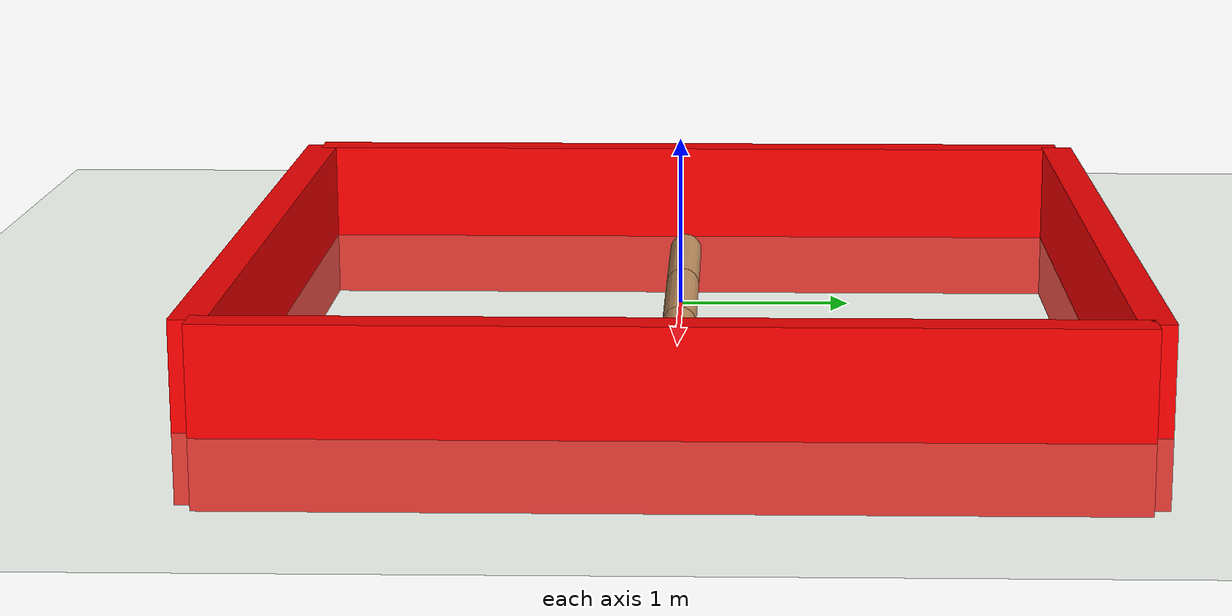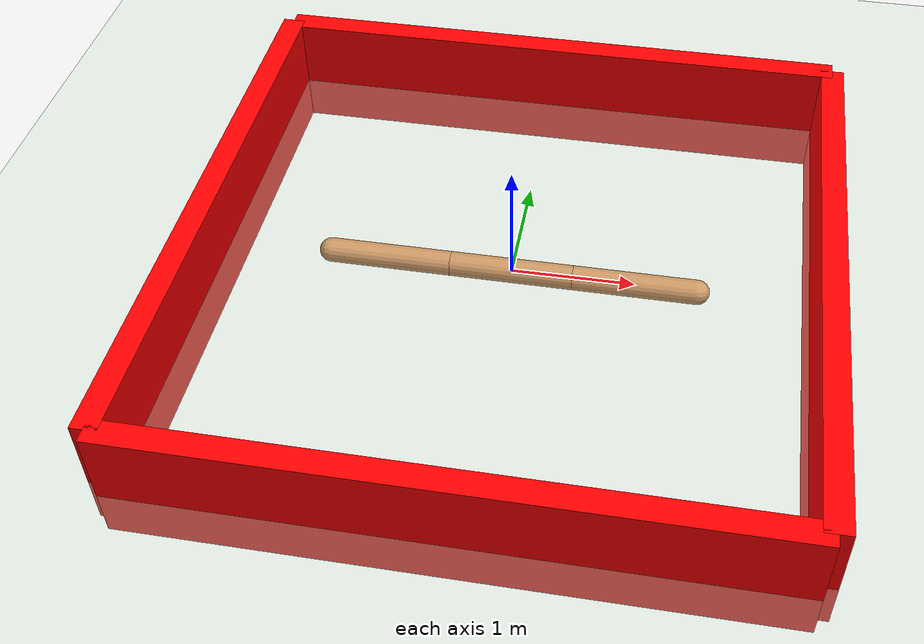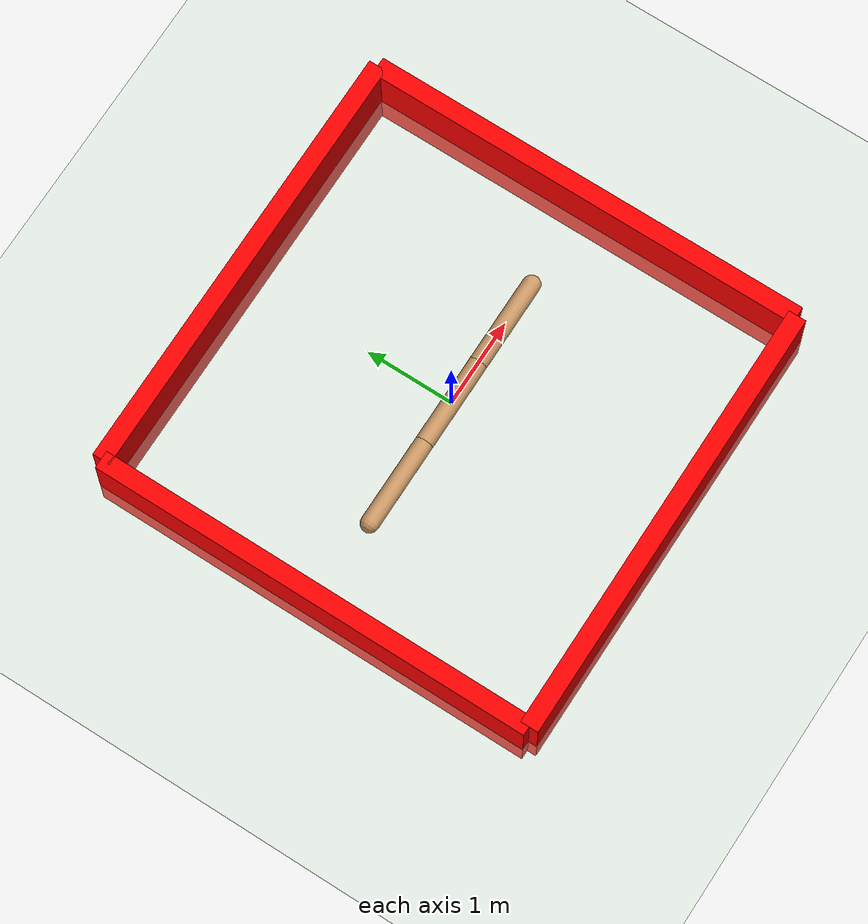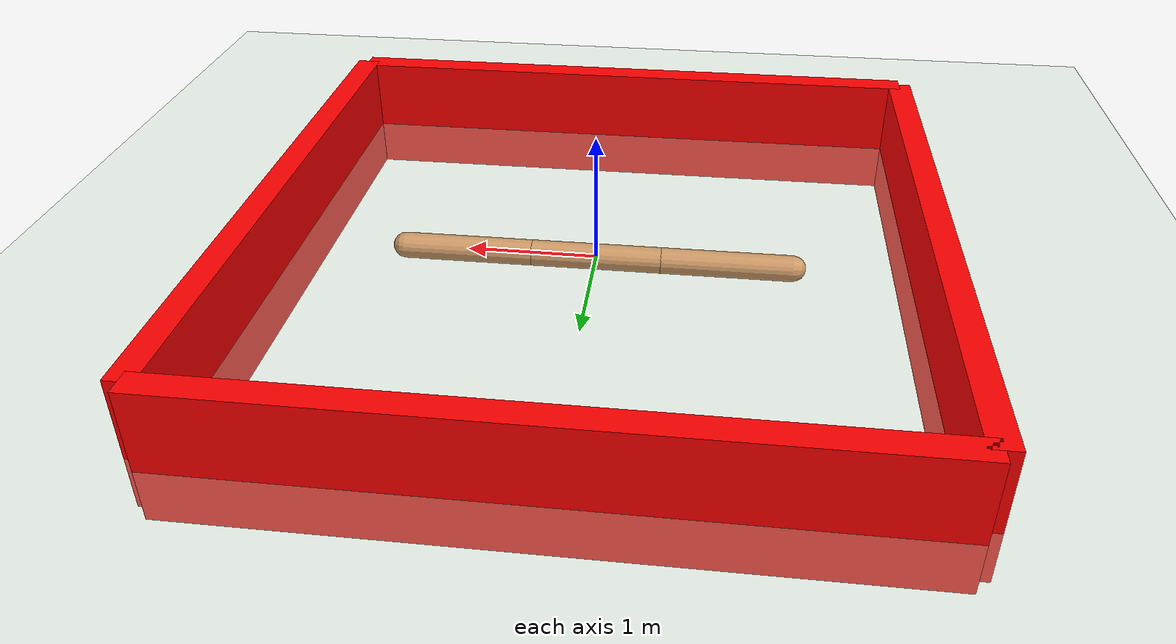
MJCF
<mujoco model="swimmer">
  <compiler inertiafromgeom="true" angle="degree" coordinate="local" />

  <custom>
    <numeric name="frame_skip" data="200" />
  </custom>
  <option timestep="0.001" density="4000" viscosity="0.1" collision="predefined" integrator="Euler" iterations="1000">
    <flag warmstart="disable" />
  </option>

  <default>
    <geom contype='1' conaffinity='1' condim='1' rgba='0.8 0.6 .4 1' material="geom" />

  </default>
  <asset>
    <texture type="skybox" builtin="gradient" width="100" height="100" rgb1="1 1 1" rgb2="0 0 0" />
    <texture name="texgeom" type="cube" builtin="flat" mark="cross" width="127" height="1278" rgb1="0.8 0.6 0.4" rgb2="0.8 0.6 0.4" markrgb="1 1 1" random="0.01" />
    <texture name="texplane" type="2d" builtin="checker" rgb1="0 0 0" rgb2="0.8 0.8 0.8" width="100" height="100" />
    <material name='MatPlane' texture="texplane" shininess="1" texrepeat="30 30" specular="1"  reflectance="0.5" />
    <material name='geom' texture="texgeom" texuniform="true" />
  </asset>
  <worldbody>
    <light directional="true" cutoff="100" exponent="1" diffuse="1 1 1" specular=".1 .1 .1" pos="0 0 1.3" dir="-0 0 -1.3" />
    <geom name='floor' material="MatPlane" pos='0 0 -0.1' size='40 40 0.1' type='plane' conaffinity='3' contype='3' rgba='0.8 0.9 0.8 1' condim='3' />
    <geom name='left_wall' pos='-2.5 0 0' size='0.1 2.5 0.5' type='box' conaffinity='1' rgba='1 0 0 1' contype='3'/>
    <geom name='right_wall' pos='2.5 0 0' size='0.1 2.5 0.5' type='box' conaffinity='1' rgba='1 0 0 1' contype='3'/>
    <geom name='front_wall' pos='0 2.5 0' size='2.5 0.1 0.5' type='box' conaffinity='1' rgba='1 0 0 1' contype='3'/>
    <geom name='back_wall' pos='0 -2.5 0' size='2.5 0.1 0.5' type='box' conaffinity='1' rgba='1 0 0 1' contype='3'/>

    <body name="torso" pos="0 0 0">
      <geom name="torso" type="capsule" fromto="1.5 0 0 0.5 0 0" size="0.1" density="1000" conaffinity='1' contype='3'/>
      <joint pos="0 0 0" type="slide" name="slider1" axis="1 0 0" />
      <joint pos="0 0 0" type="slide" name="slider2" axis="0 1 0" />
      <joint name="rot" type="hinge" pos="0 0 0" axis="0 0 1" />
      <body name="mid" pos="0.5 0 0">
        <geom name="mid" type="capsule" fromto="0 0 0 -1 0 0" size="0.1" density="1000" conaffinity='1' contype='3'/>
        <joint name="rot2" type="hinge" pos="0 0 0" axis="0 0 1" range="-100 100" limited="true" />
        <body name="back" pos="-1 0 0">
          <geom name="back" type="capsule" fromto="0 0 0 -1 0 0" size="0.1" density="1000" conaffinity='1' contype='3'/>
          <joint name="rot3" type="hinge" pos="0 0 0" axis="0 0 1" range="-100 100" limited="true" />
        </body>
      </body>
    </body>>
  </worldbody>
  <actuator>
    <velocity joint="rot2" ctrllimited="true" ctrlrange="-300 300" />
    <velocity joint="rot3" ctrllimited="true" ctrlrange="-300 300" />
  </actuator>
  <contact>
    <pair geom1='torso' geom2='right_wall'/>
    <pair geom1='torso' geom2='left_wall'/>
    <pair geom1='torso' geom2='front_wall'/>
    <pair geom1='torso' geom2='back_wall'/>

    <pair geom1='mid' geom2='right_wall'/>
    <pair geom1='mid' geom2='left_wall'/>
    <pair geom1='mid' geom2='front_wall'/>
    <pair geom1='mid' geom2='back_wall'/>

    <pair geom1='back' geom2='right_wall'/>
    <pair geom1='back' geom2='left_wall'/>
    <pair geom1='back' geom2='front_wall'/>
    <pair geom1='back' geom2='back_wall'/>
  </contact>
</mujoco>
